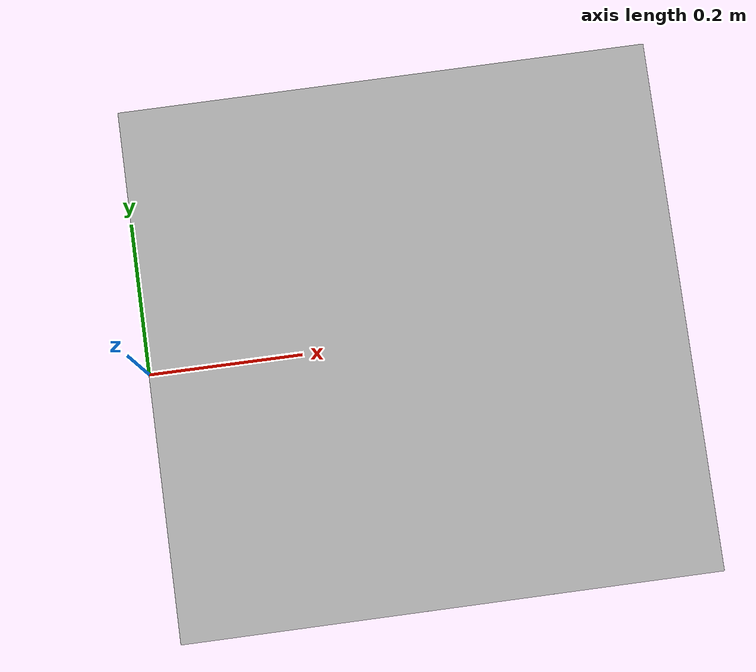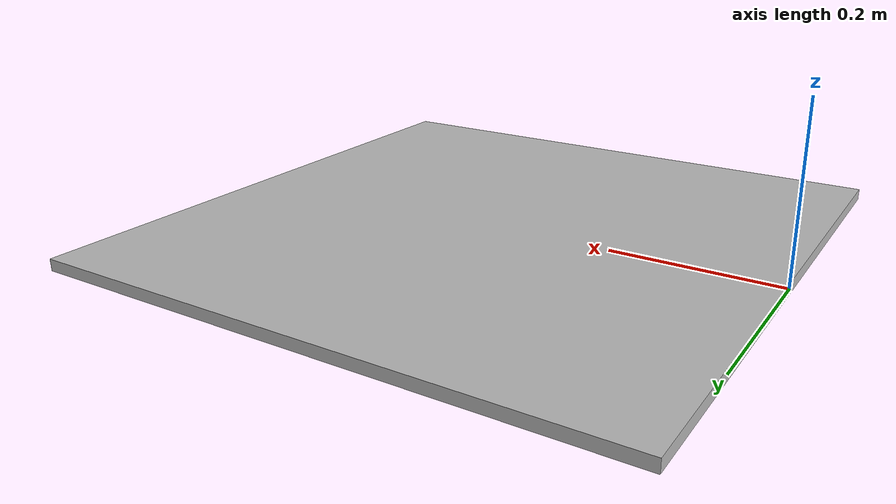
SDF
<?xml version="1.0" ?><sdf version="1.6">
  <model name="Marker1">
    <static>true</static>
    <link name="link">
      <pose>0 0 0 0 1.5708 0</pose>
      <visual name="visual">
        <geometry>
          <mesh>
            <uri>model://marker1/meshes/Marker1.dae</uri>
          <scale>1.4 1.4 1.4</scale></mesh>
        </geometry>
      </visual>
    </link>
  </model>
</sdf>
